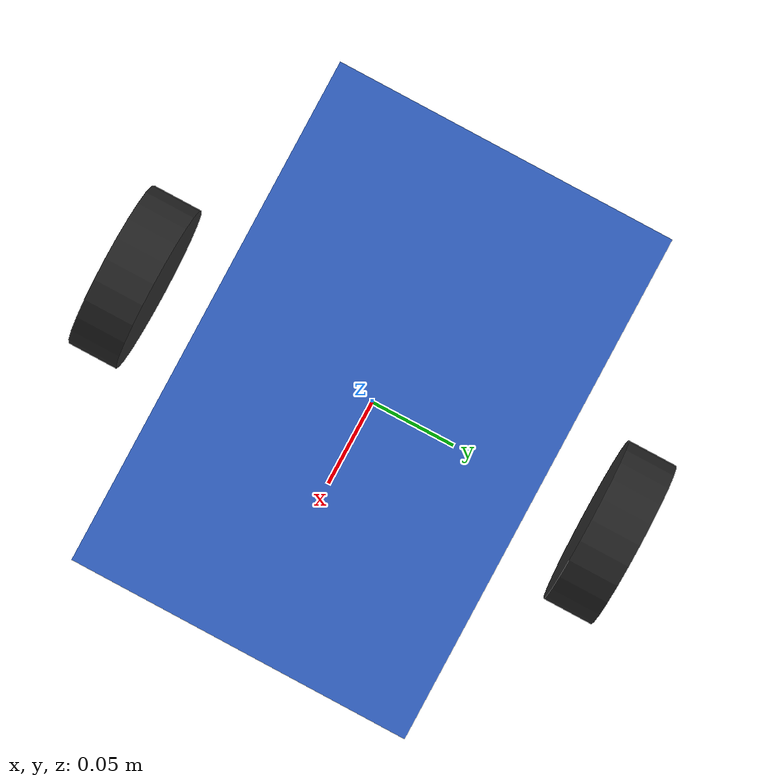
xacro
<?xml version="1.0"?>
<robot xmlns:xacro="http://www.ros.org/wiki/xacro" name="demo_robot">

  <!-- Robot dimensions -->
  <xacro:property name="base_length"     value="0.30"/>
  <xacro:property name="base_width"      value="0.20"/>
  <xacro:property name="base_height"     value="0.10"/>
  <xacro:property name="wheel_radius"    value="0.05"/>
  <xacro:property name="wheel_width"     value="0.03"/>
  <!-- Distance between the two driven wheels - track width -->
  <xacro:property name="wheel_separation" value="0.30"/>
  <!-- Caster sphere radius — equal to wheel_radius so joint z needs no offset -->
  <xacro:property name="caster_radius"   value="0.05"/>

  <!-- base_link -->
  <!-- The root link of the robot defining all other children links,
       visualization, collision and inertia properties
  -->
  <link name="base_link">
    <visual>
      <geometry>
        <box size="${base_length} ${base_width} ${base_height}"/>
      </geometry>
      <material name="blue">
        <color rgba="0.2 0.4 0.8 1.0"/>
      </material>
    </visual>
    <collision>
      <geometry>
        <box size="${base_length} ${base_width} ${base_height}"/>
      </geometry>
    </collision>
    <inertial>
      <mass value="2.0"/>
      <inertia
        ixx="0.00833"
        iyy="0.01667"
        izz="0.02167"
        ixy="0.0" ixz="0.0" iyz="0.0"/>
    </inertial>
  </link>

  <!-- Wheel macro -->
  <xacro:macro name="wheel" params="prefix y_offset">

    <link name="${prefix}_wheel">
      <visual>
        <!-- Cylinder is defined along Z by default; rotating ±90° maps Z→Y -->
        <origin xyz="0 0 0" rpy="${pi/2} 0 0"/>
        <geometry>
          <cylinder radius="${wheel_radius}" length="${wheel_width}"/>
        </geometry>
        <material name="dark_grey">
          <color rgba="0.15 0.15 0.15 1.0"/>
        </material>
      </visual>
      <collision>
        <origin xyz="0 0 0" rpy="${pi/2} 0 0"/>
        <geometry>
          <cylinder radius="${wheel_radius}" length="${wheel_width}"/>
        </geometry>
      </collision>
      <inertial>
        <mass value="0.3"/>
        <inertia
          ixx="0.000210"
          iyy="0.000375"
          izz="0.000210"
          ixy="0.0" ixz="0.0" iyz="0.0"/>
      </inertial>
    </link>

    <joint name="${prefix}_wheel_joint" type="continuous">
      <parent link="base_link"/>
      <child  link="${prefix}_wheel"/>
      <origin xyz="0.0 ${y_offset} ${-base_height/2}" rpy="0 0 0"/>
      <axis xyz="0 1 0"/>
    </joint>

  </xacro:macro>

  <!-- Instantiate left and right driven wheels -->
  <xacro:wheel prefix="left"  y_offset=" ${wheel_separation/2}"/>
  <xacro:wheel prefix="right" y_offset="-${wheel_separation/2}"/>

  <!--s Caster wheel -->
  <!--
    A passive (non-driven) support at the front without rotation in URDF
    Gazebo simulates it as a frictionless sphere so it pivots freely.
  -->
  <link name="caster_wheel">
    <visual>
      <geometry>
        <sphere radius="${caster_radius}"/>
      </geometry>
      <material name="light_grey">
        <color rgba="0.6 0.6 0.6 1.0"/>
      </material>
    </visual>
    <collision>
      <geometry>
        <sphere radius="${caster_radius}"/>
      </geometry>
    </collision>
    <inertial>
      <mass value="0.05"/>
      <!-- Inertia of a solid sphere (r=0.05): I = 2/5 * m * r² = 0.00005 -->
      <inertia
        ixx="0.00005"
        iyy="0.00005"
        izz="0.00005"
        ixy="0.0" ixz="0.0" iyz="0.0"/>
    </inertial>
  </link>

  <joint name="caster_joint" type="fixed">
    <parent link="base_link"/>
    <child  link="caster_wheel"/>
    <origin xyz="${base_length/2 - caster_radius} 0 ${-base_height/2}" rpy="0 0 0"/>
  </joint>

  <!-- Gazebo extensions -->
  <!-- Make the caster frictionless so it pivots without fighting the drive wheels -->
  <gazebo reference="caster_wheel">
    <mu1>0.0</mu1>
    <mu2>0.0</mu2>
  </gazebo>

  <gazebo>
    <plugin filename="gz-sim-diff-drive-system"
            name="gz::sim::systems::DiffDrive">
      <left_joint>left_wheel_joint</left_joint>
      <right_joint>right_wheel_joint</right_joint>
      <wheel_separation>${wheel_separation}</wheel_separation>
      <wheel_radius>${wheel_radius}</wheel_radius>
      <topic>/cmd_vel</topic>
      <odom_topic>/odom</odom_topic>
      <frame_id>odom</frame_id>
      <child_frame_id>base_link</child_frame_id>
      <odom_publish_frequency>20</odom_publish_frequency>
      <!-- Limit how fast wheel velocity can change — prevents impulse torques
           that destabilise the DART constraint solver on step commands. -->
      <max_linear_acceleration>2.0</max_linear_acceleration>
      <min_linear_acceleration>-2.0</min_linear_acceleration>
      <max_angular_acceleration>4.0</max_angular_acceleration>
      <min_angular_acceleration>-4.0</min_angular_acceleration>
    </plugin>
  </gazebo>

  <!--
    JointStatePub plugin: publishes wheel joint positions so robot_state_publisher
    can compute the wheel TF and RViz can animate the wheels spinning.
  -->
  <gazebo>
    <plugin filename="gz-sim-joint-state-publisher-system"
            name="gz::sim::systems::JointStatePublisher">
      <topic>/joint_states</topic>
    </plugin>
  </gazebo>

</robot>
